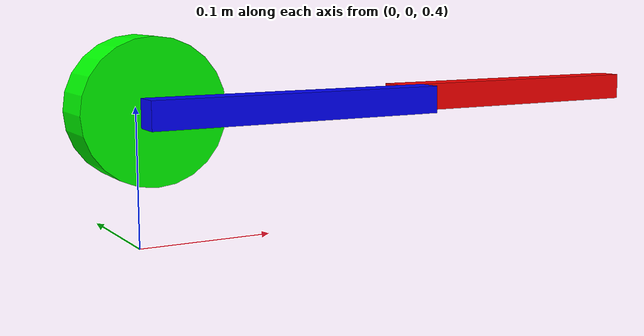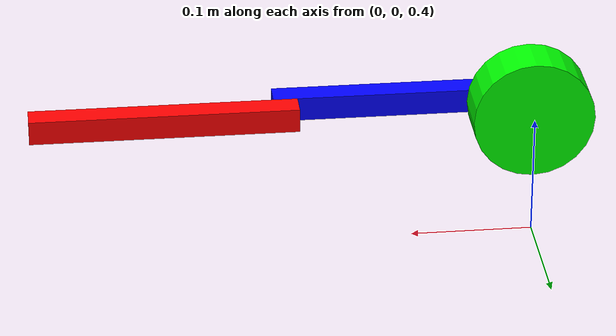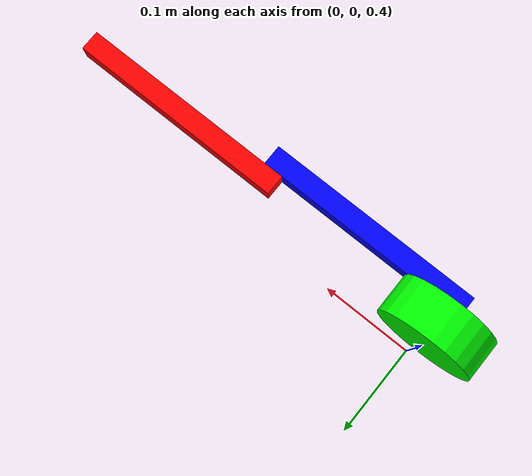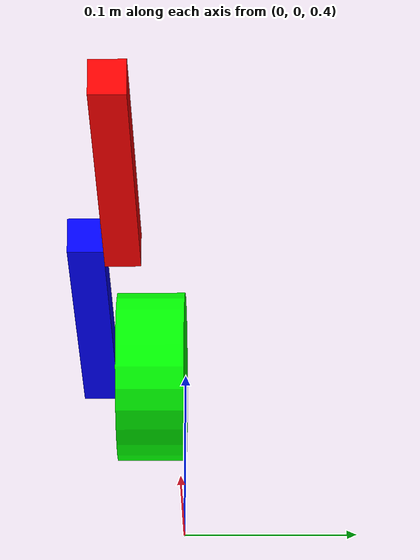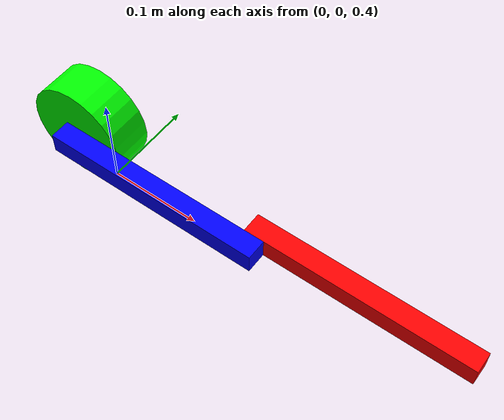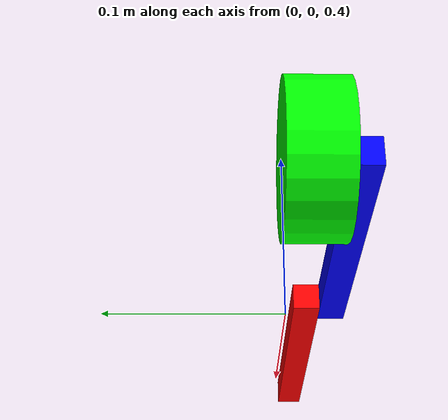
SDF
<sdf version='1.11'>
  <model name='double_pendulum'>
    <joint name='fixed' type='fixed'>
      <pose relative_to='__model__'>0 0 0.5 1.5707963267948959 0 0</pose>
      <parent>world</parent>
      <child>base_link</child>
    </joint>
    <link name='base_link'>
      <pose relative_to='fixed'>0 0 0 0 0 0</pose>
      <inertial>
        <pose>0 0 0.02 0 0 0</pose>
        <mass>1.5</mass>
        <inertia>
          <ixx>0.0011375000000000001</ixx>
          <ixy>0</ixy>
          <ixz>0</ixz>
          <iyy>0.0011375000000000001</iyy>
          <iyz>0</iyz>
          <izz>0.0018749999999999999</izz>
        </inertia>
      </inertial>
      <collision name='base_link_collision'>
        <pose>0 0 0.02 0 0 0</pose>
        <geometry>
          <cylinder>
            <length>0.040000000000000001</length>
            <radius>0.050000000000000003</radius>
          </cylinder>
        </geometry>
      </collision>
      <visual name='base_link_visual'>
        <pose>0 0 0.02 0 0 0</pose>
        <geometry>
          <cylinder>
            <length>0.040000000000000001</length>
            <radius>0.050000000000000003</radius>
          </cylinder>
        </geometry>
        <material>
          <diffuse>0 1 0 1</diffuse>
          <ambient>0 1 0 1</ambient>
        </material>
      </visual>
    </link>
    <joint name='joint1' type='revolute'>
      <pose relative_to='base_link'>0 0 0.050000000000000003 0 0 0</pose>
      <parent>base_link</parent>
      <child>link1</child>
      <axis>
        <xyz>0 0 1</xyz>
        <limit>
          <lower>-3.1400000000000001</lower>
          <upper>3.1400000000000001</upper>
          <effort>100</effort>
          <velocity>5</velocity>
        </limit>
        <dynamics>
          <damping>0.10000000000000001</damping>
          <friction>0.01</friction>
          <spring_reference>0</spring_reference>
          <spring_stiffness>0</spring_stiffness>
        </dynamics>
      </axis>
    </joint>
    <link name='link1'>
      <pose relative_to='joint1'>0 0 0 0 0 0</pose>
      <inertial>
        <pose>0.10000000000000001 0 0 0 0 0</pose>
        <mass>1.5</mass>
        <inertia>
          <ixx>0.0001</ixx>
          <ixy>0</ixy>
          <ixz>0</ixz>
          <iyy>0.0061000000000000004</iyy>
          <iyz>0</iyz>
          <izz>0.0061000000000000004</izz>
        </inertia>
      </inertial>
      <collision name='link1_collision'>
        <pose>0.10000000000000001 0 0 0 0 0</pose>
        <geometry>
          <box>
            <size>0.22 0.014999999999999999 0.014999999999999999</size>
          </box>
        </geometry>
      </collision>
      <visual name='link1_visual'>
        <pose>0.10000000000000001 0 0 0 0 0</pose>
        <geometry>
          <box>
            <size>0.22 0.02 0.02</size>
          </box>
        </geometry>
        <material>
          <diffuse>0 0 1 1</diffuse>
          <ambient>0 0 1 1</ambient>
        </material>
      </visual>
    </link>
    <joint name='joint2' type='revolute'>
      <pose relative_to='link1'>0.20000000000000001 0 -0.02 0 0 0</pose>
      <parent>link1</parent>
      <child>link2</child>
      <axis>
        <xyz>0 0 1</xyz>
        <limit>
          <lower>-3.1400000000000001</lower>
          <upper>3.1400000000000001</upper>
          <effort>100</effort>
          <velocity>5</velocity>
        </limit>
        <dynamics>
          <damping>0.10000000000000001</damping>
          <friction>0.01</friction>
          <spring_reference>0</spring_reference>
          <spring_stiffness>0</spring_stiffness>
        </dynamics>
      </axis>
    </joint>
    <link name='link2'>
      <pose relative_to='joint2'>0 0 0 0 0 0</pose>
      <inertial>
        <pose>0.10000000000000001 0 0 0 0 0</pose>
        <mass>1.5</mass>
        <inertia>
          <ixx>0.0001</ixx>
          <ixy>0</ixy>
          <ixz>0</ixz>
          <iyy>0.0061000000000000004</iyy>
          <iyz>0</iyz>
          <izz>0.0061000000000000004</izz>
        </inertia>
      </inertial>
      <collision name='link2_collision'>
        <pose>0.10000000000000001 0 0 0 0 0</pose>
        <geometry>
          <box>
            <size>0.22 0.02 0.02</size>
          </box>
        </geometry>
        <surface>
          <contact>
            <ode/>
          </contact>
          <friction>
            <ode/>
          </friction>
        </surface>
      </collision>
      <visual name='link2_visual'>
        <pose>0.10000000000000001 0 0 0 0 0</pose>
        <geometry>
          <box>
            <size>0.22 0.02 0.02</size>
          </box>
        </geometry>
        <material>
          <diffuse>1 0 0 1</diffuse>
          <ambient>1 0 0 1</ambient>
        </material>
      </visual>
      <sensor name='imu_sensor' type='imu'>
        <always_on>true</always_on>
        <update_rate>100</update_rate>
        <visualize>true</visualize>
        <topic>imu</topic>
        <imu>
          <angular_velocity/>
          <linear_acceleration/>
        </imu>
      </sensor>
    </link>
    <plugin name='gz::sim::systems::Imu' filename='gz-sim-imu-system'/>
    <plugin name='gz::sim::systems::JointStatePublisher' filename='gz-sim-joint-state-publisher-system'/>
    <self_collide>true</self_collide>
    <frame name='tool0_joint' attached_to='link2'>
      <pose>0.20000000000000001 0 0 0 0 0</pose>
    </frame>
    <frame name='tool0' attached_to='tool0_joint'>
      <pose>0 0 0 0 0 0</pose>
    </frame>
  </model>
</sdf>
